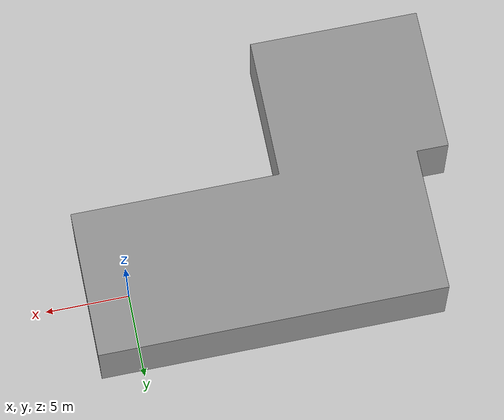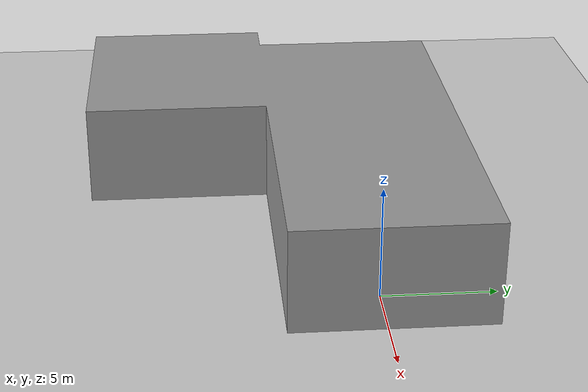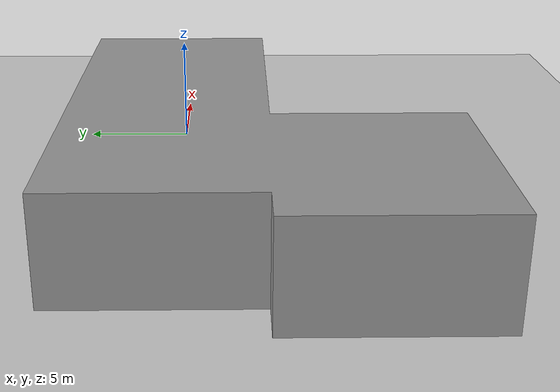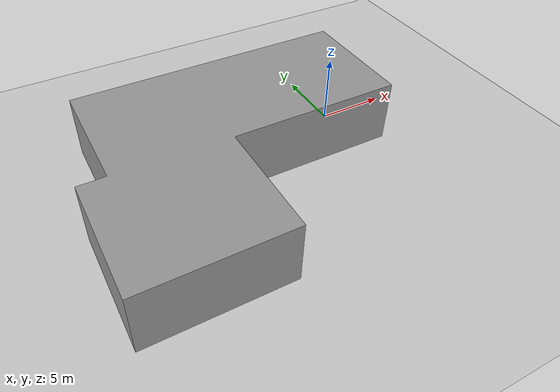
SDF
<?xml version="1.0" ?>
<sdf version="1.4">
  <world name="default">

    <scene>
      <ambient>0.5 0.5 0.5 1</ambient>
      <background>0.5 0.5 0.5 1</background>
      <shadows>false</shadows>
    </scene>

    <physics type="ode">
      <gravity>0 0 -9.8</gravity>

      <ode>
        <solver>
          <type>quick</type>
          <iters>10</iters>
          <sor>1.3</sor>
        </solver>
        <constraints>
          <cfm>0.0</cfm>
          <erp>0.2</erp>
          <contact_max_correcting_vel>100.0</contact_max_correcting_vel>
          <contact_surface_layer>0.001</contact_surface_layer>
        </constraints>
      </ode>

      <real_time_update_rate>1000</real_time_update_rate>
      <max_step_size>0.001</max_step_size>
    </physics>

    <include>
      <uri>model://ground_plane</uri>
    </include>

    <model name='FA_LAB_NEW'>
        <link name='FA_LAB_NEW_link'>
            <pose>-10.0 -4.0 0 0 0 0</pose>

            <collision name='FA_LAB_NEW_collision'>
                <geometry>
                    <mesh>
                        <scale>1 1 1</scale>
                        <uri>file://FA_LAB_NEW/meshes/base_link.dae</uri>
                    </mesh>
                </geometry>
            </collision>

            <visual name='FA_LAB_NEW'>
                <geometry>
                    <mesh>
                        <scale>1 1 1</scale>
                        <uri>file://FA_LAB_NEW/meshes/base_link.dae</uri>
                    </mesh>
                </geometry>
            </visual>
        </link>
        <static>true</static>
    </model>

    <model name='Obstacal_1'>
      <link name='base_link'>
        <pose>-4 -2 0 0 0 0</pose>
        <collision name='base_link_collision'>
          <geometry>
            <mesh>
              <scale>2 2 2</scale>
              <uri>file://obstacle/meshes/base_link.STL</uri>
            </mesh>
          </geometry>
        </collision>

        <visual name='base_link_visual'>
          <geometry>
            <mesh>
              <scale>2 2 2</scale>
              <uri>file://obstacle/meshes/base_link.dae</uri>
            </mesh>
          </geometry>
        </visual>

      </link>
      <static>true</static>
    </model>

    <model name='Obstacal_2'>
      <link name='base_link'>
        <pose>-10 2 0 0 0 0</pose>
        <collision name='base_link_collision'>
          <geometry>
            <mesh>
              <scale>3 3 2</scale>
              <uri>file://obstacle/meshes/base_link.STL</uri>
            </mesh>
          </geometry>
        </collision>

        <visual name='base_link_visual'>
          <geometry>
            <mesh>
              <scale>3 3 2</scale>
              <uri>file://obstacle/meshes/base_link.dae</uri>
            </mesh>
          </geometry>
        </visual>

      </link>
      <static>true</static>
    </model>

    <model name='Target'>
      <link name='base_link'>
        <pose>-15 0 0 0 0 0</pose>

        <collision name='Target_collision'>
          <geometry>
            <mesh>
              <scale>1 1 1</scale>
              <uri>file://target_2/Target/meshes/target.STL</uri>
            </mesh>
          </geometry>
        </collision>

        <visual name='Target_visual'>
          <geometry>
            <mesh>
              <scale>1 1 1</scale>
              <uri>file://target_2/Target/meshes/Target.dae</uri>
            </mesh>
          </geometry>
        </visual>
      </link>
      <static>true</static>
    </model>

    <light type="directional" name="my_light">
      <pose>0 0 30 0 0 0</pose>
      <diffuse>.5 .5 .5 1</diffuse>
      <specular>.1 .1 .1 1</specular>
      <attenuation>
        <range>200</range>
      </attenuation>
      <direction>0 0 -1</direction>
      <cast_shadows>false</cast_shadows>
    </light>
    <gravity>0 0 -9.8</gravity>
  </world>
</sdf>
